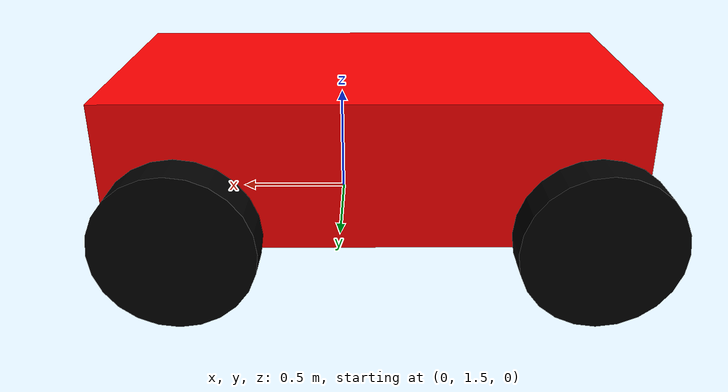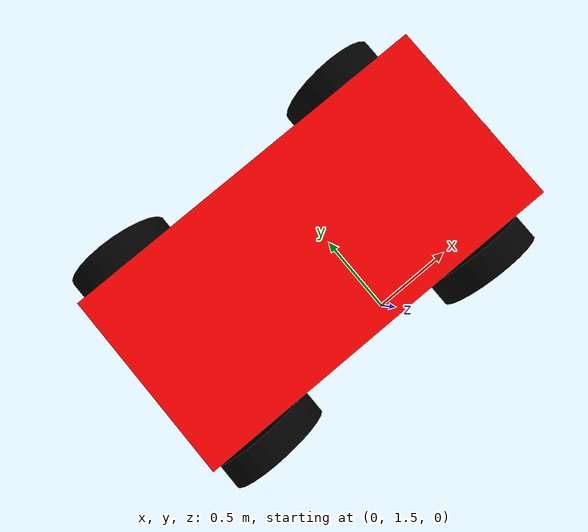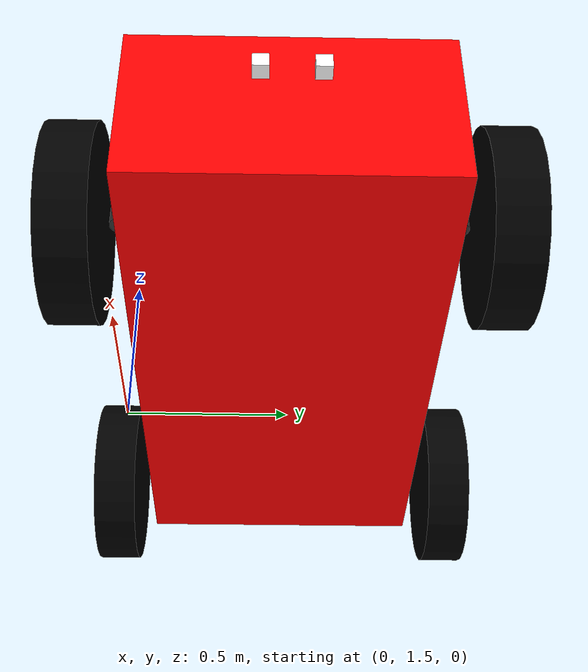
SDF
<?xml version="1.0" ?>
<sdf version="1.9">
	<model name='autonomous_vehicle'>
    <pose>0 2 0.325 0 -0 0</pose>

    <link name='chassis'>
      <pose>-0.151427 -0 0.175 0 -0 0</pose>
      <inertial>
        <mass>1.14395</mass>
        <inertia>
          <ixx>0.126164</ixx>
          <ixy>0</ixy>
          <ixz>0</ixz>
          <iyy>0.416519</iyy>
          <iyz>0</iyz>
          <izz>0.481014</izz>
        </inertia>
      </inertial>
      <visual name='visual'>
        <geometry>
          <box>
            <size>2.01142 1 0.568726</size>
          </box>
        </geometry>
        <material>
          <ambient>1.0 0 0 1</ambient>
          <diffuse>1.0 0 0 1</diffuse>
          <specular>1.0 0 0 1</specular>
        </material>
      </visual>
      <collision name='collision'>
        <geometry>
          <box>
            <size>2.01142 1 0.568726</size>
          </box>
        </geometry>
      </collision>
    </link>

    <link name='front_left_wheel'>
      <pose>0.554283 0.625029 -0.025 -1.5707 0 0</pose>
      <inertial>
        <mass>2</mass>
        <inertia>
          <ixx>0.145833</ixx>
          <ixy>0</ixy>
          <ixz>0</ixz>
          <iyy>0.145833</iyy>
          <iyz>0</iyz>
          <izz>0.125</izz>
        </inertia>
      </inertial>
      <visual name='visual'>
        <geometry>
          <cylinder>
            <length>0.15</length>
            <radius>0.3</radius>
          </cylinder>
        </geometry>
        <material>
          <ambient>0.0 0.0 0.0 1</ambient>
          <diffuse>0.0 0.0 0.0 1</diffuse>
          <specular>0.0 0.0 0.0 1</specular>
        </material>
      </visual>
      <collision name='collision'>
        <geometry>
          <cylinder>
            <length>0.15</length>
            <radius>0.3</radius>
          </cylinder>
        </geometry>
        <surface>
          <friction>
            <ode>
              <mu>0.5</mu>
              <mu2>1.0</mu2>
              <fdir1>0 0 1</fdir1>
            </ode>
          </friction>
        </surface>
      </collision>
    </link>

    <link name='rear_left_wheel'>
      <pose>-0.957138 0.625029 -0.025 -1.5707 0 0</pose>
      <inertial>
        <mass>2</mass>
        <inertia>
          <ixx>0.145833</ixx>
          <ixy>0</ixy>
          <ixz>0</ixz>
          <iyy>0.145833</iyy>
          <iyz>0</iyz>
          <izz>0.125</izz>
        </inertia>
      </inertial>
      <visual name='visual'>
        <geometry>
          <cylinder>
            <length>0.15</length>
            <radius>0.3</radius>
          </cylinder>
        </geometry>
        <material>
          <ambient>0.0 0.0 0.0 1</ambient>
          <diffuse>0.0 0.0 0.0 1</diffuse>
          <specular>0.0 0.0 0.0 1</specular>
        </material>
      </visual>
      <collision name='collision'>
        <geometry>
          <cylinder>
            <length>0.15</length>
            <radius>0.3</radius>
          </cylinder>
        </geometry>
        <surface>
          <friction>
            <ode>
              <mu>0.5</mu>
              <mu2>1.0</mu2>
              <fdir1>0 0 1</fdir1>
            </ode>
          </friction>
        </surface>
      </collision>
    </link>

    <link name='front_right_wheel'>
      <pose>0.554282 -0.625029 -0.025 -1.5707 0 0</pose>
      <inertial>
        <mass>2</mass>
        <inertia>
          <ixx>0.145833</ixx>
          <ixy>0</ixy>
          <ixz>0</ixz>
          <iyy>0.145833</iyy>
          <iyz>0</iyz>
          <izz>0.125</izz>
        </inertia>
      </inertial>
      <visual name='visual'>
        <geometry>
          <cylinder>
            <length>0.15</length>
            <radius>0.3</radius>
          </cylinder>
        </geometry>
        <material>
          <ambient>0.0 0.0 0.0 1</ambient>
          <diffuse>0.0 0.0 0.0 1</diffuse>
          <specular>0.0 0.0 0.0 1</specular>
        </material>
      </visual>
      <collision name='collision'>
        <geometry>
          <cylinder>
            <length>0.15</length>
            <radius>0.3</radius>
          </cylinder>
        </geometry>
        <surface>
          <friction>
            <ode>
              <mu>0.5</mu>
              <mu2>1.0</mu2>
              <fdir1>0 0 1</fdir1>
            </ode>
          </friction>
        </surface>
      </collision>
    </link>

    <link name='rear_right_wheel'>
      <pose>-0.957138 -0.625029 -0.025 -1.5707 0 0</pose>
      <inertial>
        <mass>2</mass>
        <inertia>
          <ixx>0.145833</ixx>
          <ixy>0</ixy>
          <ixz>0</ixz>
          <iyy>0.145833</iyy>
          <iyz>0</iyz>
          <izz>0.125</izz>
        </inertia>
      </inertial>
      <visual name='visual'>
        <geometry>
          <cylinder>
            <length>0.15</length>
            <radius>0.3</radius>
          </cylinder>
        </geometry>
        <material>
          <ambient>0.0 0.0 0.0 1</ambient>
          <diffuse>0.0 0.0 0.0 1</diffuse>
          <specular>0.0 0.0 0.0 1</specular>
        </material>
      </visual>
      <collision name='collision'>
        <geometry>
          <cylinder>
            <length>0.15</length>
            <radius>0.3</radius>
          </cylinder>
        </geometry>
        <surface>
          <friction>
            <ode>
              <mu>0.5</mu>
              <mu2>1.0</mu2>
              <fdir1>0 0 1</fdir1>
            </ode>
          </friction>
        </surface>
      </collision>
    </link>

    <link name="front_left_wheel_steering_link">
      <pose>0.554283 0.5 0.02 0 0 0</pose>
      <inertial>
        <mass>0.5</mass>
        <inertia>
          <ixx>0.0153</ixx>
          <iyy>0.025</iyy>
          <izz>0.0153</izz>
        </inertia>
      </inertial>
      <visual name="steering_link_visual">
        <pose>0 0 0 0 0 0</pose>
        <geometry>
          <cylinder>
            <length>0.1</length>
            <radius>0.03</radius>
          </cylinder>
        </geometry>
        <material>
          <ambient>0.2 0.2 0.2 1</ambient>
          <diffuse>0.2 0.2 0.2 1</diffuse>
          <specular>0.2 0.2 0.2 1</specular>
        </material>
      </visual>
    </link>

    <link name="front_right_wheel_steering_link">
      <pose>0.554283 -0.5 0.02 0 0 0</pose>
      <inertial>
        <mass>0.5</mass>
        <inertia>
          <ixx>0.0153</ixx>
          <iyy>0.025</iyy>
          <izz>0.0153</izz>
        </inertia>
      </inertial>
      <visual name="steering_link_visual">
        <pose>0 0 0 0 0 0</pose>
        <geometry>
          <cylinder>
            <length>0.1</length>
            <radius>0.03</radius>
          </cylinder>
        </geometry>
        <material>
          <ambient>0.2 0.2 0.2 1</ambient>
          <diffuse>0.2 0.2 0.2 1</diffuse>
          <specular>0.2 0.2 0.2 1</specular>
        </material>
      </visual>
    </link>

    <joint name="front_left_wheel_steering_joint" type="revolute">
      <child>front_left_wheel_steering_link</child>
      <parent>chassis</parent>
      <axis>
        <xyz>0 0 1</xyz>
        <limit>
          <lower>-0.6</lower>
          <upper>+0.6</upper>
          <velocity>1.0</velocity>
          <effort>25</effort>
        </limit>
        <use_parent_model_frame>1</use_parent_model_frame>
      </axis>
    </joint>

    <joint name="front_right_wheel_steering_joint" type="revolute">
      <parent>chassis</parent>
      <child>front_right_wheel_steering_link</child>
      <axis>
        <xyz>0 0 1</xyz>
        <limit>
          <lower>-0.6</lower>
          <upper>+0.6</upper>
          <velocity>1.0</velocity>
          <effort>25</effort>
        </limit>
      </axis>
    </joint>

    <joint name='front_left_wheel_joint' type='revolute'>
      <parent>front_left_wheel_steering_link</parent>
      <child>front_left_wheel</child>
      <axis>
        <xyz>0 0 1</xyz>
        <limit>
          <lower>-1.79769e+308</lower>
          <upper>1.79769e+308</upper>
        </limit>
      </axis>
    </joint>

    <joint name='front_right_wheel_joint' type='revolute'>
      <parent>front_right_wheel_steering_link</parent>
      <child>front_right_wheel</child>
      <axis>
        <xyz>0 0 1</xyz>
        <limit>
          <lower>-1.79769e+308</lower>
          <upper>1.79769e+308</upper>
        </limit>
      </axis>
    </joint>

    <joint name='rear_left_wheel_joint' type='revolute'>
      <parent>chassis</parent>
      <child>rear_left_wheel</child>
      <axis>
        <xyz>0 0 1</xyz>
        <limit>
          <lower>-1.79769e+308</lower>
          <upper>1.79769e+308</upper>
        </limit>
      </axis>
    </joint>

    <joint name='rear_right_wheel_joint' type='revolute'>
      <parent>chassis</parent>
      <child>rear_right_wheel</child>
      <axis>
        <xyz>0 0 1</xyz>
        <limit>
          <lower>-1.79769e+308</lower>
          <upper>1.79769e+308</upper>
        </limit>
      </axis>
    </joint>

    <link name="left_camera_link">
      <pose>0.920 0.09 0.25 0 0 0</pose>
      <inertial>
        <mass>0.1</mass>
      </inertial>
      <collision name="collision">
        <geometry>
          <box>
            <size>0.05 0.05 0.05</size>
          </box>
        </geometry>
      </collision>
      <visual name="visual">
        <geometry>
          <box>
            <size>0.05 0.05 0.05</size>
          </box>
        </geometry>
        <material>
          <ambient>1.0 1.0 1.0 1.0</ambient>
          <diffuse>1.0 1.0 1.0 1.0</diffuse>
          <specular>1.0 1.0 1.0 1.0</specular>
        </material>
      </visual>
      <sensor name="left_camera" type="camera">
        <camera>
          <horizontal_fov>1.1519</horizontal_fov>
          <image>
            <width>768</width>
            <height>432</height>
          </image>
          <clip>
            <near>0.1</near>
            <far>100</far>
          </clip>
        </camera>
        <always_on>1</always_on>
        <update_rate>30</update_rate>
        <visualize>true</visualize>
      </sensor>
    </link>

    <link name="right_camera_link">
      <pose>0.920 -0.09 0.25 0 0 0</pose>
      <inertial>
        <mass>0.1</mass>
      </inertial>
      <collision name="collision">
        <geometry>
          <box>
            <size>0.05 0.05 0.05</size>
          </box>
        </geometry>
      </collision>
      <visual name="visual">
        <geometry>
          <box>
            <size>0.05 0.05 0.05</size>
          </box>
        </geometry>
        <material>
          <ambient>1.0 1.0 1.0 1.0</ambient>
          <diffuse>1.0 1.0 1.0 1.0</diffuse>
          <specular>1.0 1.0 1.0 1.0</specular>
        </material>
      </visual>
      <sensor name="right_camera" type="camera">
        <camera>
          <horizontal_fov>1.1519</horizontal_fov>
          <image>
            <width>768</width>
            <height>432</height>
          </image>
          <clip>
            <near>0.1</near>
            <far>100</far>
          </clip>
        </camera>
        <always_on>1</always_on>
        <update_rate>30</update_rate>
        <visualize>true</visualize>
      </sensor>
    </link>

    <joint name='left_camera_joint' type='fixed'>
      <parent>chassis</parent>
      <child>left_camera_link</child>
    </joint>

    <joint name='rigt_camera_joint' type='fixed'>
      <parent>chassis</parent>
      <child>right_camera_link</child>
    </joint>

    <link name="rear_axle_midpoint">
      <pose>-0.957138 0 -0.025 0 0 0</pose>
      <visual name="visual">
        <geometry>
          <sphere>
            <radius>0.01</radius>
          </sphere>
        </geometry>
        <material>
          <ambient>0 1 0 1</ambient>
        </material>
      </visual>
    </link>
    <joint name="rear_axle_joint" type="fixed">
      <parent>chassis</parent>
      <child>rear_axle_midpoint</child>
    </joint>

    <plugin
      filename="libignition-gazebo-odometry-publisher-system.so"
      name="ignition::gazebo::systems::OdometryPublisher">
      <xyz_offset>-0.957138 0 -0.025 0 0 0</xyz_offset>
      <odom_publish_frequency>15</odom_publish_frequency>
    </plugin>

    <plugin
      filename="libignition-gazebo-joint-state-publisher-system.so"
      name="ignition::gazebo::systems::JointStatePublisher">
      <joint_name>front_left_wheel_steering_joint</joint_name>
      <joint_name>front_right_wheel_steering_joint</joint_name>
      <joint_name>rear_left_wheel_joint</joint_name>
      <joint_name>rear_right_wheel_joint</joint_name>
    </plugin>

    <plugin
      filename="libignition-gazebo-joint-position-controller-system.so"
      name="ignition::gazebo::systems::JointPositionController">
      <joint_name>front_left_wheel_steering_joint</joint_name>
      <p_gain>1</p_gain>
      <i_gain>0.1</i_gain>
      <d_gain>2.5</d_gain>
    </plugin>

    <plugin
      filename="libignition-gazebo-joint-position-controller-system.so"
      name="ignition::gazebo::systems::JointPositionController">
      <joint_name>front_right_wheel_steering_joint</joint_name>
      <p_gain>1</p_gain>
      <i_gain>0.1</i_gain>
      <d_gain>2.5</d_gain>
    </plugin>

    <plugin
      filename="libignition-gazebo-joint-controller-system.so"
      name="ignition::gazebo::systems::JointController">
      <joint_name>rear_left_wheel_joint</joint_name>
    </plugin>

    <plugin
      filename="libignition-gazebo-joint-controller-system.so"
      name="ignition::gazebo::systems::JointController">
      <joint_name>rear_right_wheel_joint</joint_name>
    </plugin>

  </model>
</sdf>
